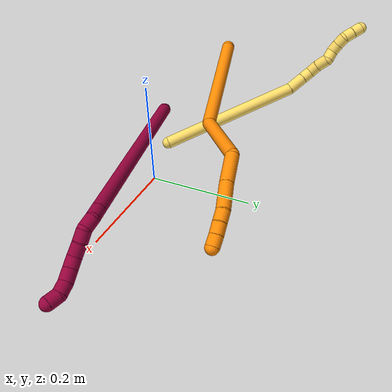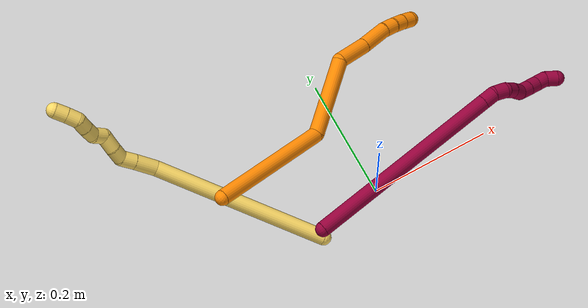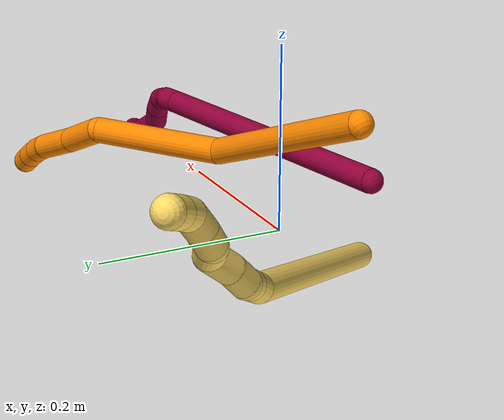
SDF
<sdf version="1.7">
 <world name="default">
  <model name="5">
   <static>0</static>
   <link name="5">
    <collision name="collision-cylinder-e_1_1_4">
     <pose>-0.008833 0.006274 0.144841 -0.043289 -0.060854 0.001318</pose>
     <geometry><cylinder><radius>0.0125</radius><length>0.290491</length></cylinder></geometry>
     <surface>
      <friction><ode><mu>1.16</mu><mu2>1.16</mu2><slip1>0</slip1><slip2>0</slip2></ode></friction>
      <contact><ode><kp>1e+06</kp><kd>1</kd><max_vel>0</max_vel><min_depth>0.001</min_depth></ode></contact>
     </surface>
    </collision>
    <visual name="visual-cylinder-e_1_1_4">
     <pose>-0.008833 0.006274 0.144841 -0.043289 -0.060854 0.001318</pose>
     <geometry><cylinder><radius>0.0125</radius><length>0.290491</length></cylinder></geometry>
     <material><ambient>1 0.858824 0.4 1</ambient></material>
    </visual>
    <collision name="collision-cylinder-e_2_4_5">
     <pose>-0.015154 0.016322 0.307417 -0.209655 0.137675 -0.014508</pose>
     <geometry><cylinder><radius>0.0125</radius><length>0.036612</length></cylinder></geometry>
     <surface>
      <friction><ode><mu>1.16</mu><mu2>1.16</mu2><slip1>0</slip1><slip2>0</slip2></ode></friction>
      <contact><ode><kp>1e+06</kp><kd>1</kd><max_vel>0</max_vel><min_depth>0.001</min_depth></ode></contact>
     </surface>
    </collision>
    <visual name="visual-cylinder-e_2_4_5">
     <pose>-0.015154 0.016322 0.307417 -0.209655 0.137675 -0.014508</pose>
     <geometry><cylinder><radius>0.0125</radius><length>0.036612</length></cylinder></geometry>
     <material><ambient>1 0.858824 0.4 1</ambient></material>
    </visual>
    <collision name="collision-cylinder-e_3_5_6">
     <pose>-0.010759 0.022078 0.336377 -0.17479 0.163743 -0.014379</pose>
     <geometry><cylinder><radius>0.0125</radius><length>0.023104</length></cylinder></geometry>
     <surface>
      <friction><ode><mu>1.16</mu><mu2>1.16</mu2><slip1>0</slip1><slip2>0</slip2></ode></friction>
      <contact><ode><kp>1e+06</kp><kd>1</kd><max_vel>0</max_vel><min_depth>0.001</min_depth></ode></contact>
     </surface>
    </collision>
    <visual name="visual-cylinder-e_3_5_6">
     <pose>-0.010759 0.022078 0.336377 -0.17479 0.163743 -0.014379</pose>
     <geometry><cylinder><radius>0.0125</radius><length>0.023104</length></cylinder></geometry>
     <material><ambient>1 0.858824 0.4 1</ambient></material>
    </visual>
    <collision name="collision-cylinder-e_4_6_7">
     <pose>-0.011093 0.030718 0.356214 -0.658043 -0.20089 0.068795</pose>
     <geometry><cylinder><radius>0.0125</radius><length>0.022221</length></cylinder></geometry>
     <surface>
      <friction><ode><mu>1.16</mu><mu2>1.16</mu2><slip1>0</slip1><slip2>0</slip2></ode></friction>
      <contact><ode><kp>1e+06</kp><kd>1</kd><max_vel>0</max_vel><min_depth>0.001</min_depth></ode></contact>
     </surface>
    </collision>
    <visual name="visual-cylinder-e_4_6_7">
     <pose>-0.011093 0.030718 0.356214 -0.658043 -0.20089 0.068795</pose>
     <geometry><cylinder><radius>0.0125</radius><length>0.022221</length></cylinder></geometry>
     <material><ambient>1 0.858824 0.4 1</ambient></material>
    </visual>
    <collision name="collision-cylinder-e_5_7_8">
     <pose>-0.017564 0.044198 0.375054 -0.588316 -0.333189 0.101795</pose>
     <geometry><cylinder><radius>0.0125</radius><length>0.026018</length></cylinder></geometry>
     <surface>
      <friction><ode><mu>1.16</mu><mu2>1.16</mu2><slip1>0</slip1><slip2>0</slip2></ode></friction>
      <contact><ode><kp>1e+06</kp><kd>1</kd><max_vel>0</max_vel><min_depth>0.001</min_depth></ode></contact>
     </surface>
    </collision>
    <visual name="visual-cylinder-e_5_7_8">
     <pose>-0.017564 0.044198 0.375054 -0.588316 -0.333189 0.101795</pose>
     <geometry><cylinder><radius>0.0125</radius><length>0.026018</length></cylinder></geometry>
     <material><ambient>1 0.858824 0.4 1</ambient></material>
    </visual>
    <collision name="collision-cylinder-e_6_8_9">
     <pose>-0.017416 0.054911 0.393913 -0.423476 0.435314 -0.09501</pose>
     <geometry><cylinder><radius>0.0125</radius><length>0.020884</length></cylinder></geometry>
     <surface>
      <friction><ode><mu>1.16</mu><mu2>1.16</mu2><slip1>0</slip1><slip2>0</slip2></ode></friction>
      <contact><ode><kp>1e+06</kp><kd>1</kd><max_vel>0</max_vel><min_depth>0.001</min_depth></ode></contact>
     </surface>
    </collision>
    <visual name="visual-cylinder-e_6_8_9">
     <pose>-0.017416 0.054911 0.393913 -0.423476 0.435314 -0.09501</pose>
     <geometry><cylinder><radius>0.0125</radius><length>0.020884</length></cylinder></geometry>
     <material><ambient>1 0.858824 0.4 1</ambient></material>
    </visual>
    <collision name="collision-cylinder-e_7_9_10">
     <pose>-0.013226 0.06537 0.410202 -0.708962 -0.021182 0.00784</pose>
     <geometry><cylinder><radius>0.0125</radius><length>0.020181</length></cylinder></geometry>
     <surface>
      <friction><ode><mu>1.16</mu><mu2>1.16</mu2><slip1>0</slip1><slip2>0</slip2></ode></friction>
      <contact><ode><kp>1e+06</kp><kd>1</kd><max_vel>0</max_vel><min_depth>0.001</min_depth></ode></contact>
     </surface>
    </collision>
    <visual name="visual-cylinder-e_7_9_10">
     <pose>-0.013226 0.06537 0.410202 -0.708962 -0.021182 0.00784</pose>
     <geometry><cylinder><radius>0.0125</radius><length>0.020181</length></cylinder></geometry>
     <material><ambient>1 0.858824 0.4 1</ambient></material>
    </visual>
    <collision name="collision-cylinder-e_8_10_11">
     <pose>-0.014503 0.078398 0.425457 -0.704629 -0.106185 0.039071</pose>
     <geometry><cylinder><radius>0.0125</radius><length>0.020059</length></cylinder></geometry>
     <surface>
      <friction><ode><mu>1.16</mu><mu2>1.16</mu2><slip1>0</slip1><slip2>0</slip2></ode></friction>
      <contact><ode><kp>1e+06</kp><kd>1</kd><max_vel>0</max_vel><min_depth>0.001</min_depth></ode></contact>
     </surface>
    </collision>
    <visual name="visual-cylinder-e_8_10_11">
     <pose>-0.014503 0.078398 0.425457 -0.704629 -0.106185 0.039071</pose>
     <geometry><cylinder><radius>0.0125</radius><length>0.020059</length></cylinder></geometry>
     <material><ambient>1 0.858824 0.4 1</ambient></material>
    </visual>
    <collision name="collision-cylinder-e_9_11_12">
     <pose>-0.015744 0.086593 0.442996 -0.172777 -0.017648 0.001528</pose>
     <geometry><cylinder><radius>0.0125</radius><length>0.020185</length></cylinder></geometry>
     <surface>
      <friction><ode><mu>1.16</mu><mu2>1.16</mu2><slip1>0</slip1><slip2>0</slip2></ode></friction>
      <contact><ode><kp>1e+06</kp><kd>1</kd><max_vel>0</max_vel><min_depth>0.001</min_depth></ode></contact>
     </surface>
    </collision>
    <visual name="visual-cylinder-e_9_11_12">
     <pose>-0.015744 0.086593 0.442996 -0.172777 -0.017648 0.001528</pose>
     <geometry><cylinder><radius>0.0125</radius><length>0.020185</length></cylinder></geometry>
     <material><ambient>1 0.858824 0.4 1</ambient></material>
    </visual>
    <collision name="collision-cylinder-e_10_12_2">
     <pose>-0.015759 0.089561 0.462983 -0.122134 0.016036 -0.00098</pose>
     <geometry><cylinder><radius>0.0125</radius><length>0.020246</length></cylinder></geometry>
     <surface>
      <friction><ode><mu>1.16</mu><mu2>1.16</mu2><slip1>0</slip1><slip2>0</slip2></ode></friction>
      <contact><ode><kp>1e+06</kp><kd>1</kd><max_vel>0</max_vel><min_depth>0.001</min_depth></ode></contact>
     </surface>
    </collision>
    <visual name="visual-cylinder-e_10_12_2">
     <pose>-0.015759 0.089561 0.462983 -0.122134 0.016036 -0.00098</pose>
     <geometry><cylinder><radius>0.0125</radius><length>0.020246</length></cylinder></geometry>
     <material><ambient>1 0.858824 0.4 1</ambient></material>
    </visual>
    <collision name="collision-sphere-2">
     <pose>-0.015597 0.090794 0.473029 0 -0 0</pose>
     <geometry><sphere><radius>0.0125</radius></sphere></geometry>
     <surface>
      <friction><ode><mu>1.16</mu><mu2>1.16</mu2><slip1>0</slip1><slip2>0</slip2></ode></friction>
      <contact><ode><kp>1e+06</kp><kd>1</kd><max_vel>0</max_vel><min_depth>0.001</min_depth></ode></contact>
     </surface>
    </collision>
    <visual name="visual-sphere-2">
     <pose>-0.015597 0.090794 0.473029 0 -0 0</pose>
     <geometry><sphere><radius>0.0125</radius></sphere></geometry>
     <material><ambient>1 0.858824 0.4 1</ambient></material>
    </visual>
    <collision name="collision-sphere-12">
     <pose>-0.015922 0.088328 0.452936 0 -0 0</pose>
     <geometry><sphere><radius>0.0125</radius></sphere></geometry>
     <surface>
      <friction><ode><mu>1.16</mu><mu2>1.16</mu2><slip1>0</slip1><slip2>0</slip2></ode></friction>
      <contact><ode><kp>1e+06</kp><kd>1</kd><max_vel>0</max_vel><min_depth>0.001</min_depth></ode></contact>
     </surface>
    </collision>
    <visual name="visual-sphere-12">
     <pose>-0.015922 0.088328 0.452936 0 -0 0</pose>
     <geometry><sphere><radius>0.0125</radius></sphere></geometry>
     <material><ambient>1 0.858824 0.4 1</ambient></material>
    </visual>
    <collision name="collision-sphere-11">
     <pose>-0.015566 0.084858 0.433055 0 -0 0</pose>
     <geometry><sphere><radius>0.0125</radius></sphere></geometry>
     <surface>
      <friction><ode><mu>1.16</mu><mu2>1.16</mu2><slip1>0</slip1><slip2>0</slip2></ode></friction>
      <contact><ode><kp>1e+06</kp><kd>1</kd><max_vel>0</max_vel><min_depth>0.001</min_depth></ode></contact>
     </surface>
    </collision>
    <visual name="visual-sphere-11">
     <pose>-0.015566 0.084858 0.433055 0 -0 0</pose>
     <geometry><sphere><radius>0.0125</radius></sphere></geometry>
     <material><ambient>1 0.858824 0.4 1</ambient></material>
    </visual>
    <collision name="collision-sphere-10">
     <pose>-0.01344 0.071938 0.417859 0 -0 0</pose>
     <geometry><sphere><radius>0.0125</radius></sphere></geometry>
     <surface>
      <friction><ode><mu>1.16</mu><mu2>1.16</mu2><slip1>0</slip1><slip2>0</slip2></ode></friction>
      <contact><ode><kp>1e+06</kp><kd>1</kd><max_vel>0</max_vel><min_depth>0.001</min_depth></ode></contact>
     </surface>
    </collision>
    <visual name="visual-sphere-10">
     <pose>-0.01344 0.071938 0.417859 0 -0 0</pose>
     <geometry><sphere><radius>0.0125</radius></sphere></geometry>
     <material><ambient>1 0.858824 0.4 1</ambient></material>
    </visual>
    <collision name="collision-sphere-9">
     <pose>-0.013012 0.058802 0.402545 0 -0 0</pose>
     <geometry><sphere><radius>0.0125</radius></sphere></geometry>
     <surface>
      <friction><ode><mu>1.16</mu><mu2>1.16</mu2><slip1>0</slip1><slip2>0</slip2></ode></friction>
      <contact><ode><kp>1e+06</kp><kd>1</kd><max_vel>0</max_vel><min_depth>0.001</min_depth></ode></contact>
     </surface>
    </collision>
    <visual name="visual-sphere-9">
     <pose>-0.013012 0.058802 0.402545 0 -0 0</pose>
     <geometry><sphere><radius>0.0125</radius></sphere></geometry>
     <material><ambient>1 0.858824 0.4 1</ambient></material>
    </visual>
    <collision name="collision-sphere-4">
     <pose>-0.017667 0.012548 0.289681 0 -0 0</pose>
     <geometry><sphere><radius>0.0125</radius></sphere></geometry>
     <surface>
      <friction><ode><mu>1.16</mu><mu2>1.16</mu2><slip1>0</slip1><slip2>0</slip2></ode></friction>
      <contact><ode><kp>1e+06</kp><kd>1</kd><max_vel>0</max_vel><min_depth>0.001</min_depth></ode></contact>
     </surface>
    </collision>
    <visual name="visual-sphere-4">
     <pose>-0.017667 0.012548 0.289681 0 -0 0</pose>
     <geometry><sphere><radius>0.0125</radius></sphere></geometry>
     <material><ambient>1 0.858824 0.4 1</ambient></material>
    </visual>
    <collision name="collision-sphere-1">
     <geometry><sphere><radius>0.0125</radius></sphere></geometry>
     <surface>
      <friction><ode><mu>1.16</mu><mu2>1.16</mu2><slip1>0</slip1><slip2>0</slip2></ode></friction>
      <contact><ode><kp>1e+06</kp><kd>1</kd><max_vel>0</max_vel><min_depth>0.001</min_depth></ode></contact>
     </surface>
    </collision>
    <visual name="visual-sphere-1">
     <geometry><sphere><radius>0.0125</radius></sphere></geometry>
     <material><ambient>1 0.858824 0.4 1</ambient></material>
    </visual>
    <collision name="collision-sphere-8">
     <pose>-0.021819 0.051021 0.385281 0 -0 0</pose>
     <geometry><sphere><radius>0.0125</radius></sphere></geometry>
     <surface>
      <friction><ode><mu>1.16</mu><mu2>1.16</mu2><slip1>0</slip1><slip2>0</slip2></ode></friction>
      <contact><ode><kp>1e+06</kp><kd>1</kd><max_vel>0</max_vel><min_depth>0.001</min_depth></ode></contact>
     </surface>
    </collision>
    <visual name="visual-sphere-8">
     <pose>-0.021819 0.051021 0.385281 0 -0 0</pose>
     <geometry><sphere><radius>0.0125</radius></sphere></geometry>
     <material><ambient>1 0.858824 0.4 1</ambient></material>
    </visual>
    <collision name="collision-sphere-5">
     <pose>-0.012642 0.020096 0.325153 0 -0 0</pose>
     <geometry><sphere><radius>0.0125</radius></sphere></geometry>
     <surface>
      <friction><ode><mu>1.16</mu><mu2>1.16</mu2><slip1>0</slip1><slip2>0</slip2></ode></friction>
      <contact><ode><kp>1e+06</kp><kd>1</kd><max_vel>0</max_vel><min_depth>0.001</min_depth></ode></contact>
     </surface>
    </collision>
    <visual name="visual-sphere-5">
     <pose>-0.012642 0.020096 0.325153 0 -0 0</pose>
     <geometry><sphere><radius>0.0125</radius></sphere></geometry>
     <material><ambient>1 0.858824 0.4 1</ambient></material>
    </visual>
    <collision name="collision-sphere-6">
     <pose>-0.008876 0.02406 0.347601 0 -0 0</pose>
     <geometry><sphere><radius>0.0125</radius></sphere></geometry>
     <surface>
      <friction><ode><mu>1.16</mu><mu2>1.16</mu2><slip1>0</slip1><slip2>0</slip2></ode></friction>
      <contact><ode><kp>1e+06</kp><kd>1</kd><max_vel>0</max_vel><min_depth>0.001</min_depth></ode></contact>
     </surface>
    </collision>
    <visual name="visual-sphere-6">
     <pose>-0.008876 0.02406 0.347601 0 -0 0</pose>
     <geometry><sphere><radius>0.0125</radius></sphere></geometry>
     <material><ambient>1 0.858824 0.4 1</ambient></material>
    </visual>
    <collision name="collision-sphere-7">
     <pose>-0.01331 0.037376 0.364828 0 -0 0</pose>
     <geometry><sphere><radius>0.0125</radius></sphere></geometry>
     <surface>
      <friction><ode><mu>1.16</mu><mu2>1.16</mu2><slip1>0</slip1><slip2>0</slip2></ode></friction>
      <contact><ode><kp>1e+06</kp><kd>1</kd><max_vel>0</max_vel><min_depth>0.001</min_depth></ode></contact>
     </surface>
    </collision>
    <visual name="visual-sphere-7">
     <pose>-0.01331 0.037376 0.364828 0 -0 0</pose>
     <geometry><sphere><radius>0.0125</radius></sphere></geometry>
     <material><ambient>1 0.858824 0.4 1</ambient></material>
    </visual>
    <inertial>
     <pose>-0.011262 0.024725 0.244259 0 -0 0</pose>
     <mass>0.5</mass>
     <inertia><ixx>0.002071</ixx><ixy>0</ixy><ixz>0</ixz><iyy>0.00208</iyy><iyz>0</iyz><izz>6.6e-05</izz></inertia>
    </inertial>
   </link>
   <pose>-0.112398 -0.02893 0.011445 1.30439 -0.207114 -2.27912</pose>
  </model>
  <model name="8">
   <static>0</static>
   <link name="8">
    <collision name="collision-cylinder-e_1_1_4">
     <pose>0.08268 0.008213 -0.142463 -3.084 0.525133 -2.92809</pose>
     <geometry><cylinder><radius>0.0125</radius><length>0.329844</length></cylinder></geometry>
     <surface>
      <friction><ode><mu>1.16</mu><mu2>1.16</mu2><slip1>0</slip1><slip2>0</slip2></ode></friction>
      <contact><ode><kp>1e+06</kp><kd>1</kd><max_vel>0</max_vel><min_depth>0.001</min_depth></ode></contact>
     </surface>
    </collision>
    <visual name="visual-cylinder-e_1_1_4">
     <pose>0.08268 0.008213 -0.142463 -3.084 0.525133 -2.92809</pose>
     <geometry><cylinder><radius>0.0125</radius><length>0.329844</length></cylinder></geometry>
     <material><ambient>0.584314 0 0.227451 1</ambient></material>
    </visual>
    <collision name="collision-cylinder-e_2_4_5">
     <pose>0.171032 0.017002 -0.294378 -3.08074 0.539689 -2.92239</pose>
     <geometry><cylinder><radius>0.0125</radius><length>0.022075</length></cylinder></geometry>
     <surface>
      <friction><ode><mu>1.16</mu><mu2>1.16</mu2><slip1>0</slip1><slip2>0</slip2></ode></friction>
      <contact><ode><kp>1e+06</kp><kd>1</kd><max_vel>0</max_vel><min_depth>0.001</min_depth></ode></contact>
     </surface>
    </collision>
    <visual name="visual-cylinder-e_2_4_5">
     <pose>0.171032 0.017002 -0.294378 -3.08074 0.539689 -2.92239</pose>
     <geometry><cylinder><radius>0.0125</radius><length>0.022075</length></cylinder></geometry>
     <material><ambient>0.584314 0 0.227451 1</ambient></material>
    </visual>
    <collision name="collision-cylinder-e_3_5_6">
     <pose>0.183305 0.021916 -0.311354 -2.6187 0.649868 -1.79911</pose>
     <geometry><cylinder><radius>0.0125</radius><length>0.02182</length></cylinder></geometry>
     <surface>
      <friction><ode><mu>1.16</mu><mu2>1.16</mu2><slip1>0</slip1><slip2>0</slip2></ode></friction>
      <contact><ode><kp>1e+06</kp><kd>1</kd><max_vel>0</max_vel><min_depth>0.001</min_depth></ode></contact>
     </surface>
    </collision>
    <visual name="visual-cylinder-e_3_5_6">
     <pose>0.183305 0.021916 -0.311354 -2.6187 0.649868 -1.79911</pose>
     <geometry><cylinder><radius>0.0125</radius><length>0.02182</length></cylinder></geometry>
     <material><ambient>0.584314 0 0.227451 1</ambient></material>
    </visual>
    <collision name="collision-cylinder-e_4_6_7">
     <pose>0.198597 0.031341 -0.321025 -1.96983 1.00484 -1.38314</pose>
     <geometry><cylinder><radius>0.0125</radius><length>0.020592</length></cylinder></geometry>
     <surface>
      <friction><ode><mu>1.16</mu><mu2>1.16</mu2><slip1>0</slip1><slip2>0</slip2></ode></friction>
      <contact><ode><kp>1e+06</kp><kd>1</kd><max_vel>0</max_vel><min_depth>0.001</min_depth></ode></contact>
     </surface>
    </collision>
    <visual name="visual-cylinder-e_4_6_7">
     <pose>0.198597 0.031341 -0.321025 -1.96983 1.00484 -1.38314</pose>
     <geometry><cylinder><radius>0.0125</radius><length>0.020592</length></cylinder></geometry>
     <material><ambient>0.584314 0 0.227451 1</ambient></material>
    </visual>
    <collision name="collision-cylinder-e_5_7_8">
     <pose>0.216948 0.043356 -0.324602 -1.77463 0.938734 -1.11393</pose>
     <geometry><cylinder><radius>0.0125</radius><length>0.023948</length></cylinder></geometry>
     <surface>
      <friction><ode><mu>1.16</mu><mu2>1.16</mu2><slip1>0</slip1><slip2>0</slip2></ode></friction>
      <contact><ode><kp>1e+06</kp><kd>1</kd><max_vel>0</max_vel><min_depth>0.001</min_depth></ode></contact>
     </surface>
    </collision>
    <visual name="visual-cylinder-e_5_7_8">
     <pose>0.216948 0.043356 -0.324602 -1.77463 0.938734 -1.11393</pose>
     <geometry><cylinder><radius>0.0125</radius><length>0.023948</length></cylinder></geometry>
     <material><ambient>0.584314 0 0.227451 1</ambient></material>
    </visual>
    <collision name="collision-cylinder-e_6_8_9">
     <pose>0.234934 0.053135 -0.331057 -2.62543 0.964234 -2.20723</pose>
     <geometry><cylinder><radius>0.0125</radius><length>0.020265</length></cylinder></geometry>
     <surface>
      <friction><ode><mu>1.16</mu><mu2>1.16</mu2><slip1>0</slip1><slip2>0</slip2></ode></friction>
      <contact><ode><kp>1e+06</kp><kd>1</kd><max_vel>0</max_vel><min_depth>0.001</min_depth></ode></contact>
     </surface>
    </collision>
    <visual name="visual-cylinder-e_6_8_9">
     <pose>0.234934 0.053135 -0.331057 -2.62543 0.964234 -2.20723</pose>
     <geometry><cylinder><radius>0.0125</radius><length>0.020265</length></cylinder></geometry>
     <material><ambient>0.584314 0 0.227451 1</ambient></material>
    </visual>
    <collision name="collision-cylinder-e_7_9_10">
     <pose>0.252007 0.058813 -0.341422 -2.65464 0.966193 -2.25705</pose>
     <geometry><cylinder><radius>0.0125</radius><length>0.021266</length></cylinder></geometry>
     <surface>
      <friction><ode><mu>1.16</mu><mu2>1.16</mu2><slip1>0</slip1><slip2>0</slip2></ode></friction>
      <contact><ode><kp>1e+06</kp><kd>1</kd><max_vel>0</max_vel><min_depth>0.001</min_depth></ode></contact>
     </surface>
    </collision>
    <visual name="visual-cylinder-e_7_9_10">
     <pose>0.252007 0.058813 -0.341422 -2.65464 0.966193 -2.25705</pose>
     <geometry><cylinder><radius>0.0125</radius><length>0.021266</length></cylinder></geometry>
     <material><ambient>0.584314 0 0.227451 1</ambient></material>
    </visual>
    <collision name="collision-cylinder-e_8_10_11">
     <pose>0.267548 0.064131 -0.353745 -2.79907 0.741913 -2.30479</pose>
     <geometry><cylinder><radius>0.0125</radius><length>0.020107</length></cylinder></geometry>
     <surface>
      <friction><ode><mu>1.16</mu><mu2>1.16</mu2><slip1>0</slip1><slip2>0</slip2></ode></friction>
      <contact><ode><kp>1e+06</kp><kd>1</kd><max_vel>0</max_vel><min_depth>0.001</min_depth></ode></contact>
     </surface>
    </collision>
    <visual name="visual-cylinder-e_8_10_11">
     <pose>0.267548 0.064131 -0.353745 -2.79907 0.741913 -2.30479</pose>
     <geometry><cylinder><radius>0.0125</radius><length>0.020107</length></cylinder></geometry>
     <material><ambient>0.584314 0 0.227451 1</ambient></material>
    </visual>
    <collision name="collision-cylinder-e_9_11_2">
     <pose>0.277587 0.072532 -0.368165 -2.47013 0.329105 -0.888336</pose>
     <geometry><cylinder><radius>0.0125</radius><length>0.020084</length></cylinder></geometry>
     <surface>
      <friction><ode><mu>1.16</mu><mu2>1.16</mu2><slip1>0</slip1><slip2>0</slip2></ode></friction>
      <contact><ode><kp>1e+06</kp><kd>1</kd><max_vel>0</max_vel><min_depth>0.001</min_depth></ode></contact>
     </surface>
    </collision>
    <visual name="visual-cylinder-e_9_11_2">
     <pose>0.277587 0.072532 -0.368165 -2.47013 0.329105 -0.888336</pose>
     <geometry><cylinder><radius>0.0125</radius><length>0.020084</length></cylinder></geometry>
     <material><ambient>0.584314 0 0.227451 1</ambient></material>
    </visual>
    <collision name="collision-sphere-2">
     <pose>0.280832 0.078444 -0.375605 0 -0 0</pose>
     <geometry><sphere><radius>0.0125</radius></sphere></geometry>
     <surface>
      <friction><ode><mu>1.16</mu><mu2>1.16</mu2><slip1>0</slip1><slip2>0</slip2></ode></friction>
      <contact><ode><kp>1e+06</kp><kd>1</kd><max_vel>0</max_vel><min_depth>0.001</min_depth></ode></contact>
     </surface>
    </collision>
    <visual name="visual-sphere-2">
     <pose>0.280832 0.078444 -0.375605 0 -0 0</pose>
     <geometry><sphere><radius>0.0125</radius></sphere></geometry>
     <material><ambient>0.584314 0 0.227451 1</ambient></material>
    </visual>
    <collision name="collision-sphere-11">
     <pose>0.274341 0.06662 -0.360725 0 -0 0</pose>
     <geometry><sphere><radius>0.0125</radius></sphere></geometry>
     <surface>
      <friction><ode><mu>1.16</mu><mu2>1.16</mu2><slip1>0</slip1><slip2>0</slip2></ode></friction>
      <contact><ode><kp>1e+06</kp><kd>1</kd><max_vel>0</max_vel><min_depth>0.001</min_depth></ode></contact>
     </surface>
    </collision>
    <visual name="visual-sphere-11">
     <pose>0.274341 0.06662 -0.360725 0 -0 0</pose>
     <geometry><sphere><radius>0.0125</radius></sphere></geometry>
     <material><ambient>0.584314 0 0.227451 1</ambient></material>
    </visual>
    <collision name="collision-sphere-10">
     <pose>0.260755 0.061642 -0.346764 0 -0 0</pose>
     <geometry><sphere><radius>0.0125</radius></sphere></geometry>
     <surface>
      <friction><ode><mu>1.16</mu><mu2>1.16</mu2><slip1>0</slip1><slip2>0</slip2></ode></friction>
      <contact><ode><kp>1e+06</kp><kd>1</kd><max_vel>0</max_vel><min_depth>0.001</min_depth></ode></contact>
     </surface>
    </collision>
    <visual name="visual-sphere-10">
     <pose>0.260755 0.061642 -0.346764 0 -0 0</pose>
     <geometry><sphere><radius>0.0125</radius></sphere></geometry>
     <material><ambient>0.584314 0 0.227451 1</ambient></material>
    </visual>
    <collision name="collision-sphere-9">
     <pose>0.243259 0.055985 -0.336081 0 -0 0</pose>
     <geometry><sphere><radius>0.0125</radius></sphere></geometry>
     <surface>
      <friction><ode><mu>1.16</mu><mu2>1.16</mu2><slip1>0</slip1><slip2>0</slip2></ode></friction>
      <contact><ode><kp>1e+06</kp><kd>1</kd><max_vel>0</max_vel><min_depth>0.001</min_depth></ode></contact>
     </surface>
    </collision>
    <visual name="visual-sphere-9">
     <pose>0.243259 0.055985 -0.336081 0 -0 0</pose>
     <geometry><sphere><radius>0.0125</radius></sphere></geometry>
     <material><ambient>0.584314 0 0.227451 1</ambient></material>
    </visual>
    <collision name="collision-sphere-4">
     <pose>0.16536 0.016426 -0.284927 0 -0 0</pose>
     <geometry><sphere><radius>0.0125</radius></sphere></geometry>
     <surface>
      <friction><ode><mu>1.16</mu><mu2>1.16</mu2><slip1>0</slip1><slip2>0</slip2></ode></friction>
      <contact><ode><kp>1e+06</kp><kd>1</kd><max_vel>0</max_vel><min_depth>0.001</min_depth></ode></contact>
     </surface>
    </collision>
    <visual name="visual-sphere-4">
     <pose>0.16536 0.016426 -0.284927 0 -0 0</pose>
     <geometry><sphere><radius>0.0125</radius></sphere></geometry>
     <material><ambient>0.584314 0 0.227451 1</ambient></material>
    </visual>
    <collision name="collision-sphere-1">
     <geometry><sphere><radius>0.0125</radius></sphere></geometry>
     <surface>
      <friction><ode><mu>1.16</mu><mu2>1.16</mu2><slip1>0</slip1><slip2>0</slip2></ode></friction>
      <contact><ode><kp>1e+06</kp><kd>1</kd><max_vel>0</max_vel><min_depth>0.001</min_depth></ode></contact>
     </surface>
    </collision>
    <visual name="visual-sphere-1">
     <geometry><sphere><radius>0.0125</radius></sphere></geometry>
     <material><ambient>0.584314 0 0.227451 1</ambient></material>
    </visual>
    <collision name="collision-sphere-8">
     <pose>0.226609 0.050284 -0.326034 0 -0 0</pose>
     <geometry><sphere><radius>0.0125</radius></sphere></geometry>
     <surface>
      <friction><ode><mu>1.16</mu><mu2>1.16</mu2><slip1>0</slip1><slip2>0</slip2></ode></friction>
      <contact><ode><kp>1e+06</kp><kd>1</kd><max_vel>0</max_vel><min_depth>0.001</min_depth></ode></contact>
     </surface>
    </collision>
    <visual name="visual-sphere-8">
     <pose>0.226609 0.050284 -0.326034 0 -0 0</pose>
     <geometry><sphere><radius>0.0125</radius></sphere></geometry>
     <material><ambient>0.584314 0 0.227451 1</ambient></material>
    </visual>
    <collision name="collision-sphere-5">
     <pose>0.176703 0.017578 -0.303829 0 -0 0</pose>
     <geometry><sphere><radius>0.0125</radius></sphere></geometry>
     <surface>
      <friction><ode><mu>1.16</mu><mu2>1.16</mu2><slip1>0</slip1><slip2>0</slip2></ode></friction>
      <contact><ode><kp>1e+06</kp><kd>1</kd><max_vel>0</max_vel><min_depth>0.001</min_depth></ode></contact>
     </surface>
    </collision>
    <visual name="visual-sphere-5">
     <pose>0.176703 0.017578 -0.303829 0 -0 0</pose>
     <geometry><sphere><radius>0.0125</radius></sphere></geometry>
     <material><ambient>0.584314 0 0.227451 1</ambient></material>
    </visual>
    <collision name="collision-sphere-6">
     <pose>0.189906 0.026253 -0.31888 0 -0 0</pose>
     <geometry><sphere><radius>0.0125</radius></sphere></geometry>
     <surface>
      <friction><ode><mu>1.16</mu><mu2>1.16</mu2><slip1>0</slip1><slip2>0</slip2></ode></friction>
      <contact><ode><kp>1e+06</kp><kd>1</kd><max_vel>0</max_vel><min_depth>0.001</min_depth></ode></contact>
     </surface>
    </collision>
    <visual name="visual-sphere-6">
     <pose>0.189906 0.026253 -0.31888 0 -0 0</pose>
     <geometry><sphere><radius>0.0125</radius></sphere></geometry>
     <material><ambient>0.584314 0 0.227451 1</ambient></material>
    </visual>
    <collision name="collision-sphere-7">
     <pose>0.207288 0.036428 -0.32317 0 -0 0</pose>
     <geometry><sphere><radius>0.0125</radius></sphere></geometry>
     <surface>
      <friction><ode><mu>1.16</mu><mu2>1.16</mu2><slip1>0</slip1><slip2>0</slip2></ode></friction>
      <contact><ode><kp>1e+06</kp><kd>1</kd><max_vel>0</max_vel><min_depth>0.001</min_depth></ode></contact>
     </surface>
    </collision>
    <visual name="visual-sphere-7">
     <pose>0.207288 0.036428 -0.32317 0 -0 0</pose>
     <geometry><sphere><radius>0.0125</radius></sphere></geometry>
     <material><ambient>0.584314 0 0.227451 1</ambient></material>
    </visual>
    <inertial>
     <pose>0.130812 0.02064 -0.206286 0 -0 0</pose>
     <mass>0.5</mass>
     <inertia>
      <ixx>-0.003077</ixx>
      <ixy>0</ixy>
      <ixz>0</ixz>
      <iyy>0.002406</iyy>
      <iyz>0</iyz>
      <izz>-0.001698</izz>
     </inertia>
    </inertial>
   </link>
   <pose>-0.117337 -0.035885 0.088932 -2.43693 0.906364 0.822529</pose>
  </model>
  <model name="19">
   <static>0</static>
   <link name="19">
    <collision name="collision-cylinder-e_1_1_4">
     <pose>0.087058 0.020352 0.049565 -0.389621 1.01909 -0.219614</pose>
     <geometry><cylinder><radius>0.0125</radius><length>0.204451</length></cylinder></geometry>
     <surface>
      <friction><ode><mu>1.16</mu><mu2>1.16</mu2><slip1>0</slip1><slip2>0</slip2></ode></friction>
      <contact><ode><kp>1e+06</kp><kd>1</kd><max_vel>0</max_vel><min_depth>0.001</min_depth></ode></contact>
     </surface>
    </collision>
    <visual name="visual-cylinder-e_1_1_4">
     <pose>0.087058 0.020352 0.049565 -0.389621 1.01909 -0.219614</pose>
     <geometry><cylinder><radius>0.0125</radius><length>0.204451</length></cylinder></geometry>
     <material><ambient>0.996078 0.537255 0 1</ambient></material>
    </visual>
    <collision name="collision-cylinder-e_2_4_5">
     <pose>0.197999 0.081076 0.141043 -0.766681 0.389433 -0.158736</pose>
     <geometry><cylinder><radius>0.0125</radius><length>0.125809</length></cylinder></geometry>
     <surface>
      <friction><ode><mu>1.16</mu><mu2>1.16</mu2><slip1>0</slip1><slip2>0</slip2></ode></friction>
      <contact><ode><kp>1e+06</kp><kd>1</kd><max_vel>0</max_vel><min_depth>0.001</min_depth></ode></contact>
     </surface>
    </collision>
    <visual name="visual-cylinder-e_2_4_5">
     <pose>0.197999 0.081076 0.141043 -0.766681 0.389433 -0.158736</pose>
     <geometry><cylinder><radius>0.0125</radius><length>0.125809</length></cylinder></geometry>
     <material><ambient>0.996078 0.537255 0 1</ambient></material>
    </visual>
    <collision name="collision-cylinder-e_3_5_6">
     <pose>0.246486 0.127125 0.195116 -0.436701 1.07146 -0.261935</pose>
     <geometry><cylinder><radius>0.0125</radius><length>0.056052</length></cylinder></geometry>
     <surface>
      <friction><ode><mu>1.16</mu><mu2>1.16</mu2><slip1>0</slip1><slip2>0</slip2></ode></friction>
      <contact><ode><kp>1e+06</kp><kd>1</kd><max_vel>0</max_vel><min_depth>0.001</min_depth></ode></contact>
     </surface>
    </collision>
    <visual name="visual-cylinder-e_3_5_6">
     <pose>0.246486 0.127125 0.195116 -0.436701 1.07146 -0.261935</pose>
     <geometry><cylinder><radius>0.0125</radius><length>0.056052</length></cylinder></geometry>
     <material><ambient>0.996078 0.537255 0 1</ambient></material>
    </visual>
    <collision name="collision-cylinder-e_4_6_7">
     <pose>0.292388 0.139674 0.21931 -0.51896 0.993943 -0.285999</pose>
     <geometry><cylinder><radius>0.0125</radius><length>0.050818</length></cylinder></geometry>
     <surface>
      <friction><ode><mu>1.16</mu><mu2>1.16</mu2><slip1>0</slip1><slip2>0</slip2></ode></friction>
      <contact><ode><kp>1e+06</kp><kd>1</kd><max_vel>0</max_vel><min_depth>0.001</min_depth></ode></contact>
     </surface>
    </collision>
    <visual name="visual-cylinder-e_4_6_7">
     <pose>0.292388 0.139674 0.21931 -0.51896 0.993943 -0.285999</pose>
     <geometry><cylinder><radius>0.0125</radius><length>0.050818</length></cylinder></geometry>
     <material><ambient>0.996078 0.537255 0 1</ambient></material>
    </visual>
    <collision name="collision-cylinder-e_5_7_8">
     <pose>0.323652 0.147851 0.235879 -0.279971 1.1286 -0.177904</pose>
     <geometry><cylinder><radius>0.0125</radius><length>0.022055</length></cylinder></geometry>
     <surface>
      <friction><ode><mu>1.16</mu><mu2>1.16</mu2><slip1>0</slip1><slip2>0</slip2></ode></friction>
      <contact><ode><kp>1e+06</kp><kd>1</kd><max_vel>0</max_vel><min_depth>0.001</min_depth></ode></contact>
     </surface>
    </collision>
    <visual name="visual-cylinder-e_5_7_8">
     <pose>0.323652 0.147851 0.235879 -0.279971 1.1286 -0.177904</pose>
     <geometry><cylinder><radius>0.0125</radius><length>0.022055</length></cylinder></geometry>
     <material><ambient>0.996078 0.537255 0 1</ambient></material>
    </visual>
    <collision name="collision-cylinder-e_6_8_9">
     <pose>0.343406 0.150381 0.243572 -0.370322 1.2376 -0.265197</pose>
     <geometry><cylinder><radius>0.0125</radius><length>0.020713</length></cylinder></geometry>
     <surface>
      <friction><ode><mu>1.16</mu><mu2>1.16</mu2><slip1>0</slip1><slip2>0</slip2></ode></friction>
      <contact><ode><kp>1e+06</kp><kd>1</kd><max_vel>0</max_vel><min_depth>0.001</min_depth></ode></contact>
     </surface>
    </collision>
    <visual name="visual-cylinder-e_6_8_9">
     <pose>0.343406 0.150381 0.243572 -0.370322 1.2376 -0.265197</pose>
     <geometry><cylinder><radius>0.0125</radius><length>0.020713</length></cylinder></geometry>
     <material><ambient>0.996078 0.537255 0 1</ambient></material>
    </visual>
    <collision name="collision-cylinder-e_7_9_2">
     <pose>0.362778 0.15217 0.249697 -0.187539 1.26551 -0.137717</pose>
     <geometry><cylinder><radius>0.0125</radius><length>0.020102</length></cylinder></geometry>
     <surface>
      <friction><ode><mu>1.16</mu><mu2>1.16</mu2><slip1>0</slip1><slip2>0</slip2></ode></friction>
      <contact><ode><kp>1e+06</kp><kd>1</kd><max_vel>0</max_vel><min_depth>0.001</min_depth></ode></contact>
     </surface>
    </collision>
    <visual name="visual-cylinder-e_7_9_2">
     <pose>0.362778 0.15217 0.249697 -0.187539 1.26551 -0.137717</pose>
     <geometry><cylinder><radius>0.0125</radius><length>0.020102</length></cylinder></geometry>
     <material><ambient>0.996078 0.537255 0 1</ambient></material>
    </visual>
    <collision name="collision-sphere-2">
     <pose>0.372364 0.152733 0.252665 0 -0 0</pose>
     <geometry><sphere><radius>0.0125</radius></sphere></geometry>
     <surface>
      <friction><ode><mu>1.16</mu><mu2>1.16</mu2><slip1>0</slip1><slip2>0</slip2></ode></friction>
      <contact><ode><kp>1e+06</kp><kd>1</kd><max_vel>0</max_vel><min_depth>0.001</min_depth></ode></contact>
     </surface>
    </collision>
    <visual name="visual-sphere-2">
     <pose>0.372364 0.152733 0.252665 0 -0 0</pose>
     <geometry><sphere><radius>0.0125</radius></sphere></geometry>
     <material><ambient>0.996078 0.537255 0 1</ambient></material>
    </visual>
    <collision name="collision-sphere-9">
     <pose>0.353192 0.151607 0.246729 0 -0 0</pose>
     <geometry><sphere><radius>0.0125</radius></sphere></geometry>
     <surface>
      <friction><ode><mu>1.16</mu><mu2>1.16</mu2><slip1>0</slip1><slip2>0</slip2></ode></friction>
      <contact><ode><kp>1e+06</kp><kd>1</kd><max_vel>0</max_vel><min_depth>0.001</min_depth></ode></contact>
     </surface>
    </collision>
    <visual name="visual-sphere-9">
     <pose>0.353192 0.151607 0.246729 0 -0 0</pose>
     <geometry><sphere><radius>0.0125</radius></sphere></geometry>
     <material><ambient>0.996078 0.537255 0 1</ambient></material>
    </visual>
    <collision name="collision-sphere-4">
     <pose>0.174117 0.040704 0.09913 0 -0 0</pose>
     <geometry><sphere><radius>0.0125</radius></sphere></geometry>
     <surface>
      <friction><ode><mu>1.16</mu><mu2>1.16</mu2><slip1>0</slip1><slip2>0</slip2></ode></friction>
      <contact><ode><kp>1e+06</kp><kd>1</kd><max_vel>0</max_vel><min_depth>0.001</min_depth></ode></contact>
     </surface>
    </collision>
    <visual name="visual-sphere-4">
     <pose>0.174117 0.040704 0.09913 0 -0 0</pose>
     <geometry><sphere><radius>0.0125</radius></sphere></geometry>
     <material><ambient>0.996078 0.537255 0 1</ambient></material>
    </visual>
    <collision name="collision-sphere-1">
     <geometry><sphere><radius>0.0125</radius></sphere></geometry>
     <surface>
      <friction><ode><mu>1.16</mu><mu2>1.16</mu2><slip1>0</slip1><slip2>0</slip2></ode></friction>
      <contact><ode><kp>1e+06</kp><kd>1</kd><max_vel>0</max_vel><min_depth>0.001</min_depth></ode></contact>
     </surface>
    </collision>
    <visual name="visual-sphere-1">
     <geometry><sphere><radius>0.0125</radius></sphere></geometry>
     <material><ambient>0.996078 0.537255 0 1</ambient></material>
    </visual>
    <collision name="collision-sphere-8">
     <pose>0.333619 0.149155 0.240414 0 -0 0</pose>
     <geometry><sphere><radius>0.0125</radius></sphere></geometry>
     <surface>
      <friction><ode><mu>1.16</mu><mu2>1.16</mu2><slip1>0</slip1><slip2>0</slip2></ode></friction>
      <contact><ode><kp>1e+06</kp><kd>1</kd><max_vel>0</max_vel><min_depth>0.001</min_depth></ode></contact>
     </surface>
    </collision>
    <visual name="visual-sphere-8">
     <pose>0.333619 0.149155 0.240414 0 -0 0</pose>
     <geometry><sphere><radius>0.0125</radius></sphere></geometry>
     <material><ambient>0.996078 0.537255 0 1</ambient></material>
    </visual>
    <collision name="collision-sphere-5">
     <pose>0.221882 0.121449 0.182955 0 -0 0</pose>
     <geometry><sphere><radius>0.0125</radius></sphere></geometry>
     <surface>
      <friction><ode><mu>1.16</mu><mu2>1.16</mu2><slip1>0</slip1><slip2>0</slip2></ode></friction>
      <contact><ode><kp>1e+06</kp><kd>1</kd><max_vel>0</max_vel><min_depth>0.001</min_depth></ode></contact>
     </surface>
    </collision>
    <visual name="visual-sphere-5">
     <pose>0.221882 0.121449 0.182955 0 -0 0</pose>
     <geometry><sphere><radius>0.0125</radius></sphere></geometry>
     <material><ambient>0.996078 0.537255 0 1</ambient></material>
    </visual>
    <collision name="collision-sphere-6">
     <pose>0.27109 0.132801 0.207277 0 -0 0</pose>
     <geometry><sphere><radius>0.0125</radius></sphere></geometry>
     <surface>
      <friction><ode><mu>1.16</mu><mu2>1.16</mu2><slip1>0</slip1><slip2>0</slip2></ode></friction>
      <contact><ode><kp>1e+06</kp><kd>1</kd><max_vel>0</max_vel><min_depth>0.001</min_depth></ode></contact>
     </surface>
    </collision>
    <visual name="visual-sphere-6">
     <pose>0.27109 0.132801 0.207277 0 -0 0</pose>
     <geometry><sphere><radius>0.0125</radius></sphere></geometry>
     <material><ambient>0.996078 0.537255 0 1</ambient></material>
    </visual>
    <collision name="collision-sphere-7">
     <pose>0.313685 0.146547 0.231343 0 -0 0</pose>
     <geometry><sphere><radius>0.0125</radius></sphere></geometry>
     <surface>
      <friction><ode><mu>1.16</mu><mu2>1.16</mu2><slip1>0</slip1><slip2>0</slip2></ode></friction>
      <contact><ode><kp>1e+06</kp><kd>1</kd><max_vel>0</max_vel><min_depth>0.001</min_depth></ode></contact>
     </surface>
    </collision>
    <visual name="visual-sphere-7">
     <pose>0.313685 0.146547 0.231343 0 -0 0</pose>
     <geometry><sphere><radius>0.0125</radius></sphere></geometry>
     <material><ambient>0.996078 0.537255 0 1</ambient></material>
    </visual>
    <inertial>
     <pose>0.185855 0.076039 0.130453 0 -0 0</pose>
     <mass>0.5</mass>
     <inertia>
      <ixx>0.000458</ixx>
      <ixy>0</ixy>
      <ixz>0</ixz>
      <iyy>0.000763</iyy>
      <iyz>0</iyz>
      <izz>-0.000949</izz>
     </inertia>
    </inertial>
   </link>
   <pose>-0.241522 0.055472 0.194835 -0.191426 0.869176 -0.098169</pose>
  </model>
 </world>
</sdf>
